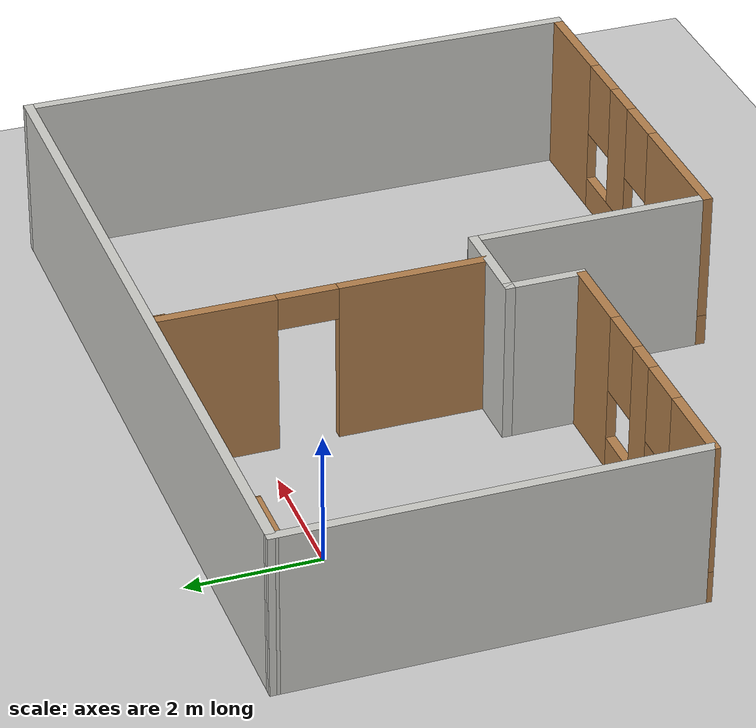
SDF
<sdf version="1.6">
 <world name="default">
  <model name="ground_plane">
   <static>1</static>
   <link name="link">
    <collision name="collision">
     <geometry><plane><normal>0 0 1</normal><size>100 100</size></plane></geometry>
     <surface><friction><ode><mu>100</mu><mu2>50</mu2></ode></friction></surface>
    </collision>
    <visual name="visual">
     <cast_shadows>0</cast_shadows>
     <geometry><plane><normal>0 0 1</normal><size>100 100</size></plane></geometry>
     <material>
      <script><uri>file://media/materials/scripts/gazebo.material</uri><name>Gazebo/Grey</name></script>
     </material>
    </visual>
   </link>
  </model>
  <model name="Building">
   <pose>3.3411 -2.74153 0 0 -0 0</pose>
   <link name="Wall_26">
    <collision name="Wall_26_Collision">
     <geometry><box><size>11.9548 0.15 2.5</size></box></geometry>
     <pose>0 0 1.25 0 -0 0</pose>
    </collision>
    <visual name="Wall_26_Visual">
     <pose>0 0 1.25 0 -0 0</pose>
     <geometry><box><size>11.9548 0.15 2.5</size></box></geometry>
     <material>
      <script><uri>file://media/materials/scripts/gazebo.material</uri><name>Gazebo/CeilingTiled</name></script>
      <ambient>1 1 1 1</ambient>
     </material>
     <meta><layer>0</layer></meta>
    </visual>
    <pose>-0.000176 4.29996 0 0 0 -0.000586</pose>
   </link>
   <link name="Wall_27">
    <collision name="Wall_27_Collision">
     <geometry><box><size>8.75 0.15 2.5</size></box></geometry>
     <pose>0 0 1.25 0 -0 0</pose>
    </collision>
    <visual name="Wall_27_Visual">
     <pose>0 0 1.25 0 -0 0</pose>
     <geometry><box><size>8.75 0.15 2.5</size></box></geometry>
     <material>
      <script><uri>file://media/materials/scripts/gazebo.material</uri><name>Gazebo/CeilingTiled</name></script>
      <ambient>1 1 1 1</ambient>
     </material>
     <meta><layer>0</layer></meta>
    </visual>
    <pose>5.90246 -0.003458 0 0 0 -1.57074</pose>
   </link>
   <link name="Wall_28">
    <pose>2.97769 -4.30342 0 0 -0 3.14159</pose>
    <visual name="Wall_28_Visual_0">
     <pose>-2.16132 0 1.25 0 -0 0</pose>
     <geometry><box><size>1.67735 0.15 2.5</size></box></geometry>
     <material>
      <script><uri>file://media/materials/scripts/gazebo.material</uri><name>Gazebo/Wood</name></script>
      <ambient>1 1 1 1</ambient>
     </material>
     <meta><layer>0</layer></meta>
    </visual>
    <collision name="Wall_28_Collision_0">
     <geometry><box><size>1.67735 0.15 2.5</size></box></geometry>
     <pose>-2.16132 0 1.25 0 -0 0</pose>
    </collision>
    <visual name="Wall_28_Visual_1">
     <pose>0.838676 0 0.25 0 -0 0</pose>
     <geometry><box><size>4.32265 0.15 0.5</size></box></geometry>
     <material>
      <script><uri>file://media/materials/scripts/gazebo.material</uri><name>Gazebo/Wood</name></script>
      <ambient>1 1 1 1</ambient>
     </material>
     <meta><layer>0</layer></meta>
    </visual>
    <collision name="Wall_28_Collision_1">
     <geometry><box><size>4.32265 0.15 0.5</size></box></geometry>
     <pose>0.838676 0 0.25 0 -0 0</pose>
    </collision>
    <visual name="Wall_28_Visual_2">
     <pose>-0.194936 0 1.5 0 -0 0</pose>
     <geometry><box><size>0.655424 0.15 2</size></box></geometry>
     <material>
      <script><uri>file://media/materials/scripts/gazebo.material</uri><name>Gazebo/Wood</name></script>
      <ambient>1 1 1 1</ambient>
     </material>
     <meta><layer>0</layer></meta>
    </visual>
    <collision name="Wall_28_Collision_2">
     <geometry><box><size>0.655424 0.15 2</size></box></geometry>
     <pose>-0.194936 0 1.5 0 -0 0</pose>
    </collision>
    <visual name="Wall_28_Visual_3">
     <pose>1.96639 0 1.5 0 -0 0</pose>
     <geometry><box><size>2.06722 0.15 2</size></box></geometry>
     <material>
      <script><uri>file://media/materials/scripts/gazebo.material</uri><name>Gazebo/Wood</name></script>
      <ambient>1 1 1 1</ambient>
     </material>
     <meta><layer>0</layer></meta>
    </visual>
    <collision name="Wall_28_Collision_3">
     <geometry><box><size>2.06722 0.15 2</size></box></geometry>
     <pose>1.96639 0 1.5 0 -0 0</pose>
    </collision>
    <visual name="Wall_28_Visual_4">
     <pose>-0.922648 0 1.9 0 -0 0</pose>
     <geometry><box><size>0.8 0.15 1.2</size></box></geometry>
     <material>
      <script><uri>file://media/materials/scripts/gazebo.material</uri><name>Gazebo/Wood</name></script>
      <ambient>1 1 1 1</ambient>
     </material>
     <meta><layer>0</layer></meta>
    </visual>
    <collision name="Wall_28_Collision_4">
     <geometry><box><size>0.8 0.15 1.2</size></box></geometry>
     <pose>-0.922648 0 1.9 0 -0 0</pose>
    </collision>
    <visual name="Wall_28_Visual_5">
     <pose>0.532776 0 1.9 0 -0 0</pose>
     <geometry><box><size>0.8 0.15 1.2</size></box></geometry>
     <material>
      <script><uri>file://media/materials/scripts/gazebo.material</uri><name>Gazebo/Wood</name></script>
      <ambient>1 1 1 1</ambient>
     </material>
     <meta><layer>0</layer></meta>
    </visual>
    <collision name="Wall_28_Collision_5">
     <geometry><box><size>0.8 0.15 1.2</size></box></geometry>
     <pose>0.532776 0 1.9 0 -0 0</pose>
    </collision>
   </link>
   <link name="Wall_29">
    <collision name="Wall_29_Collision">
     <geometry><box><size>3.75 0.15 2.5</size></box></geometry>
     <pose>0 0 1.25 0 -0 0</pose>
    </collision>
    <visual name="Wall_29_Visual">
     <pose>0 0 1.25 0 -0 0</pose>
     <geometry><box><size>3.75 0.15 2.5</size></box></geometry>
     <material>
      <script><uri>file://media/materials/scripts/gazebo.material</uri><name>Gazebo/CeilingTiled</name></script>
      <ambient>1 1 1 1</ambient>
     </material>
     <meta><layer>0</layer></meta>
    </visual>
    <pose>0.052686 -2.50342 0 0 -0 1.5708</pose>
   </link>
   <link name="Wall_30">
    <collision name="Wall_30_Collision">
     <geometry><box><size>1.5 0.15 2.5</size></box></geometry>
     <pose>0 0 1.25 0 -0 0</pose>
    </collision>
    <visual name="Wall_30_Visual">
     <pose>0 0 1.25 0 -0 0</pose>
     <geometry><box><size>1.5 0.15 2.5</size></box></geometry>
     <material>
      <script><uri>file://media/materials/scripts/gazebo.material</uri><name>Gazebo/CeilingTiled</name></script>
      <ambient>1 1 1 1</ambient>
     </material>
     <meta><layer>0</layer></meta>
    </visual>
    <pose>-0.622313 -0.703418 0 0 -0 3.14159</pose>
   </link>
   <link name="Wall_31">
    <collision name="Wall_31_Collision">
     <geometry><box><size>1.25 0.15 2.5</size></box></geometry>
     <pose>0 0 1.25 0 -0 0</pose>
    </collision>
    <visual name="Wall_31_Visual">
     <pose>0 0 1.25 0 -0 0</pose>
     <geometry><box><size>1.25 0.15 2.5</size></box></geometry>
     <material>
      <script><uri>file://media/materials/scripts/gazebo.material</uri><name>Gazebo/CeilingTiled</name></script>
      <ambient>1 1 1 1</ambient>
     </material>
     <meta><layer>0</layer></meta>
    </visual>
    <pose>-1.29731 -1.25342 0 0 0 -1.5708</pose>
   </link>
   <link name="Wall_32">
    <pose>-3.59995 -1.8 0 0 -0 3.14011</pose>
    <visual name="Wall_32_Visual_0">
     <pose>-1.71646 0 1.25 0 -0 0</pose>
     <geometry><box><size>1.32235 0.15 2.5</size></box></geometry>
     <material>
      <script><uri>file://media/materials/scripts/gazebo.material</uri><name>Gazebo/Wood</name></script>
      <ambient>1 1 1 1</ambient>
     </material>
     <meta><layer>0</layer></meta>
    </visual>
    <collision name="Wall_32_Collision_0">
     <geometry><box><size>1.32235 0.15 2.5</size></box></geometry>
     <pose>-1.71646 0 1.25 0 -0 0</pose>
    </collision>
    <visual name="Wall_32_Visual_1">
     <pose>0.661177 0 0.25 0 -0 0</pose>
     <geometry><box><size>3.43291 0.15 0.5</size></box></geometry>
     <material>
      <script><uri>file://media/materials/scripts/gazebo.material</uri><name>Gazebo/Wood</name></script>
      <ambient>1 1 1 1</ambient>
     </material>
     <meta><layer>0</layer></meta>
    </visual>
    <collision name="Wall_32_Collision_1">
     <geometry><box><size>3.43291 0.15 0.5</size></box></geometry>
     <pose>0.661177 0 0.25 0 -0 0</pose>
    </collision>
    <visual name="Wall_32_Visual_2">
     <pose>0.015645 0 1.5 0 -0 0</pose>
     <geometry><box><size>0.541852 0.15 2</size></box></geometry>
     <material>
      <script><uri>file://media/materials/scripts/gazebo.material</uri><name>Gazebo/Wood</name></script>
      <ambient>1 1 1 1</ambient>
     </material>
     <meta><layer>0</layer></meta>
    </visual>
    <collision name="Wall_32_Collision_2">
     <geometry><box><size>0.541852 0.15 2</size></box></geometry>
     <pose>0.015645 0 1.5 0 -0 0</pose>
    </collision>
    <visual name="Wall_32_Visual_3">
     <pose>1.7321 0 1.5 0 -0 0</pose>
     <geometry><box><size>1.29106 0.15 2</size></box></geometry>
     <material>
      <script><uri>file://media/materials/scripts/gazebo.material</uri><name>Gazebo/Wood</name></script>
      <ambient>1 1 1 1</ambient>
     </material>
     <meta><layer>0</layer></meta>
    </visual>
    <collision name="Wall_32_Collision_3">
     <geometry><box><size>1.29106 0.15 2</size></box></geometry>
     <pose>1.7321 0 1.5 0 -0 0</pose>
    </collision>
    <visual name="Wall_32_Visual_4">
     <pose>-0.655281 0 1.9 0 -0 0</pose>
     <geometry><box><size>0.8 0.15 1.2</size></box></geometry>
     <material>
      <script><uri>file://media/materials/scripts/gazebo.material</uri><name>Gazebo/Wood</name></script>
      <ambient>1 1 1 1</ambient>
     </material>
     <meta><layer>0</layer></meta>
    </visual>
    <collision name="Wall_32_Collision_4">
     <geometry><box><size>0.8 0.15 1.2</size></box></geometry>
     <pose>-0.655281 0 1.9 0 -0 0</pose>
    </collision>
    <visual name="Wall_32_Visual_5">
     <pose>0.686571 0 1.9 0 -0 0</pose>
     <geometry><box><size>0.8 0.15 1.2</size></box></geometry>
     <material>
      <script><uri>file://media/materials/scripts/gazebo.material</uri><name>Gazebo/Wood</name></script>
      <ambient>1 1 1 1</ambient>
     </material>
     <meta><layer>0</layer></meta>
    </visual>
    <collision name="Wall_32_Collision_5">
     <geometry><box><size>0.8 0.15 1.2</size></box></geometry>
     <pose>0.686571 0 1.9 0 -0 0</pose>
    </collision>
   </link>
   <link name="Wall_33">
    <collision name="Wall_33_Collision">
     <geometry><box><size>6.25 0.15 2.5</size></box></geometry>
     <pose>0 0 1.25 0 -0 0</pose>
    </collision>
    <visual name="Wall_33_Visual">
     <pose>0 0 1.25 0 -0 0</pose>
     <geometry><box><size>6.25 0.15 2.5</size></box></geometry>
     <material>
      <script><uri>file://media/materials/scripts/gazebo.material</uri><name>Gazebo/CeilingTiled</name></script>
      <ambient>1 1 1 1</ambient>
     </material>
     <meta><layer>0</layer></meta>
    </visual>
    <pose>-5.90258 1.25342 0 0 -0 1.5708</pose>
   </link>
   <link name="Wall_35">
    <pose>-0.511658 1.72502 0 0 0 -1.5708</pose>
    <visual name="Wall_35_Visual_0">
     <pose>-1.62043 0 1.25 0 -0 0</pose>
     <geometry><box><size>1.75914 0.15 2.5</size></box></geometry>
     <material>
      <script><uri>file://media/materials/scripts/gazebo.material</uri><name>Gazebo/Wood</name></script>
      <ambient>1 1 1 1</ambient>
     </material>
     <meta><layer>0</layer></meta>
    </visual>
    <collision name="Wall_35_Collision_0">
     <geometry><box><size>1.75914 0.15 2.5</size></box></geometry>
     <pose>-1.62043 0 1.25 0 -0 0</pose>
    </collision>
    <visual name="Wall_35_Visual_1">
     <pose>1.32957 0 1.25 0 -0 0</pose>
     <geometry><box><size>2.34086 0.15 2.5</size></box></geometry>
     <material>
      <script><uri>file://media/materials/scripts/gazebo.material</uri><name>Gazebo/Wood</name></script>
      <ambient>1 1 1 1</ambient>
     </material>
     <meta><layer>0</layer></meta>
    </visual>
    <collision name="Wall_35_Collision_1">
     <geometry><box><size>2.34086 0.15 2.5</size></box></geometry>
     <pose>1.32957 0 1.25 0 -0 0</pose>
    </collision>
    <visual name="Wall_35_Visual_2">
     <pose>-0.290864 0 2.25 0 -0 0</pose>
     <geometry><box><size>0.9 0.15 0.5</size></box></geometry>
     <material>
      <script><uri>file://media/materials/scripts/gazebo.material</uri><name>Gazebo/Wood</name></script>
      <ambient>1 1 1 1</ambient>
     </material>
     <meta><layer>0</layer></meta>
    </visual>
    <collision name="Wall_35_Collision_2">
     <geometry><box><size>0.9 0.15 0.5</size></box></geometry>
     <pose>-0.290864 0 2.25 0 -0 0</pose>
    </collision>
   </link>
   <static>1</static>
  </model>
  <model name="bookshelf">
   <static>1</static>
   <link name="link">
    <inertial><mass>1</mass></inertial>
    <collision name="back">
     <pose>0 0.005 0.6 0 -0 0</pose>
     <geometry><box><size>0.9 0.01 1.2</size></box></geometry>
    </collision>
    <visual name="visual1">
     <pose>0 0.005 0.6 0 -0 0</pose>
     <geometry><box><size>0.9 0.01 1.2</size></box></geometry>
     <material>
      <script><uri>file://media/materials/scripts/gazebo.material</uri><name>Gazebo/Wood</name></script>
     </material>
    </visual>
    <collision name="left_side">
     <pose>0.45 -0.195 0.6 0 -0 0</pose>
     <geometry><box><size>0.02 0.4 1.2</size></box></geometry>
    </collision>
    <visual name="visual2">
     <pose>0.45 -0.195 0.6 0 -0 0</pose>
     <geometry><box><size>0.02 0.4 1.2</size></box></geometry>
     <material>
      <script><uri>file://media/materials/scripts/gazebo.material</uri><name>Gazebo/Wood</name></script>
     </material>
    </visual>
    <collision name="right_side">
     <pose>-0.45 -0.195 0.6 0 -0 0</pose>
     <geometry><box><size>0.02 0.4 1.2</size></box></geometry>
    </collision>
    <visual name="visual3">
     <pose>-0.45 -0.195 0.6 0 -0 0</pose>
     <geometry><box><size>0.02 0.4 1.2</size></box></geometry>
     <material>
      <script><uri>file://media/materials/scripts/gazebo.material</uri><name>Gazebo/Wood</name></script>
     </material>
    </visual>
    <collision name="bottom">
     <pose>0 -0.195 0.03 0 -0 0</pose>
     <geometry><box><size>0.88 0.4 0.06</size></box></geometry>
    </collision>
    <visual name="visual4">
     <pose>0 -0.195 0.03 0 -0 0</pose>
     <geometry><box><size>0.88 0.4 0.06</size></box></geometry>
     <material>
      <script><uri>file://media/materials/scripts/gazebo.material</uri><name>Gazebo/Wood</name></script>
     </material>
    </visual>
    <collision name="top">
     <pose>0 -0.195 1.19 0 -0 0</pose>
     <geometry><box><size>0.88 0.4 0.02</size></box></geometry>
    </collision>
    <visual name="visual5">
     <pose>0 -0.195 1.19 0 -0 0</pose>
     <geometry><box><size>0.88 0.4 0.02</size></box></geometry>
     <material>
      <script><uri>file://media/materials/scripts/gazebo.material</uri><name>Gazebo/Wood</name></script>
     </material>
    </visual>
    <collision name="low_shelf">
     <pose>0 -0.195 0.43 0 -0 0</pose>
     <geometry><box><size>0.88 0.4 0.02</size></box></geometry>
    </collision>
    <visual name="visual6">
     <pose>0 -0.195 0.43 0 -0 0</pose>
     <geometry><box><size>0.88 0.4 0.02</size></box></geometry>
     <material>
      <script><uri>file://media/materials/scripts/gazebo.material</uri><name>Gazebo/Wood</name></script>
     </material>
    </visual>
    <collision name="high_shelf">
     <pose>0 -0.195 0.8 0 -0 0</pose>
     <geometry><box><size>0.88 0.4 0.02</size></box></geometry>
    </collision>
    <visual name="visual7">
     <pose>0 -0.195 0.8 0 -0 0</pose>
     <geometry><box><size>0.88 0.4 0.02</size></box></geometry>
     <material>
      <script><uri>file://media/materials/scripts/gazebo.material</uri><name>Gazebo/Wood</name></script>
     </material>
    </visual>
   </link>
   <pose>-0.362608 1.25683 0 0 -0 0</pose>
  </model>
  <model name="bookshelf_0">
   <static>1</static>
   <link name="link">
    <inertial><mass>1</mass></inertial>
    <collision name="back">
     <pose>0 0.005 0.6 0 -0 0</pose>
     <geometry><box><size>0.9 0.01 1.2</size></box></geometry>
    </collision>
    <visual name="visual1">
     <pose>0 0.005 0.6 0 -0 0</pose>
     <geometry><box><size>0.9 0.01 1.2</size></box></geometry>
     <material>
      <script><uri>file://media/materials/scripts/gazebo.material</uri><name>Gazebo/Wood</name></script>
     </material>
    </visual>
    <collision name="left_side">
     <pose>0.45 -0.195 0.6 0 -0 0</pose>
     <geometry><box><size>0.02 0.4 1.2</size></box></geometry>
    </collision>
    <visual name="visual2">
     <pose>0.45 -0.195 0.6 0 -0 0</pose>
     <geometry><box><size>0.02 0.4 1.2</size></box></geometry>
     <material>
      <script><uri>file://media/materials/scripts/gazebo.material</uri><name>Gazebo/Wood</name></script>
     </material>
    </visual>
    <collision name="right_side">
     <pose>-0.45 -0.195 0.6 0 -0 0</pose>
     <geometry><box><size>0.02 0.4 1.2</size></box></geometry>
    </collision>
    <visual name="visual3">
     <pose>-0.45 -0.195 0.6 0 -0 0</pose>
     <geometry><box><size>0.02 0.4 1.2</size></box></geometry>
     <material>
      <script><uri>file://media/materials/scripts/gazebo.material</uri><name>Gazebo/Wood</name></script>
     </material>
    </visual>
    <collision name="bottom">
     <pose>0 -0.195 0.03 0 -0 0</pose>
     <geometry><box><size>0.88 0.4 0.06</size></box></geometry>
    </collision>
    <visual name="visual4">
     <pose>0 -0.195 0.03 0 -0 0</pose>
     <geometry><box><size>0.88 0.4 0.06</size></box></geometry>
     <material>
      <script><uri>file://media/materials/scripts/gazebo.material</uri><name>Gazebo/Wood</name></script>
     </material>
    </visual>
    <collision name="top">
     <pose>0 -0.195 1.19 0 -0 0</pose>
     <geometry><box><size>0.88 0.4 0.02</size></box></geometry>
    </collision>
    <visual name="visual5">
     <pose>0 -0.195 1.19 0 -0 0</pose>
     <geometry><box><size>0.88 0.4 0.02</size></box></geometry>
     <material>
      <script><uri>file://media/materials/scripts/gazebo.material</uri><name>Gazebo/Wood</name></script>
     </material>
    </visual>
    <collision name="low_shelf">
     <pose>0 -0.195 0.43 0 -0 0</pose>
     <geometry><box><size>0.88 0.4 0.02</size></box></geometry>
    </collision>
    <visual name="visual6">
     <pose>0 -0.195 0.43 0 -0 0</pose>
     <geometry><box><size>0.88 0.4 0.02</size></box></geometry>
     <material>
      <script><uri>file://media/materials/scripts/gazebo.material</uri><name>Gazebo/Wood</name></script>
     </material>
    </visual>
    <collision name="high_shelf">
     <pose>0 -0.195 0.8 0 -0 0</pose>
     <geometry><box><size>0.88 0.4 0.02</size></box></geometry>
    </collision>
    <visual name="visual7">
     <pose>0 -0.195 0.8 0 -0 0</pose>
     <geometry><box><size>0.88 0.4 0.02</size></box></geometry>
     <material>
      <script><uri>file://media/materials/scripts/gazebo.material</uri><name>Gazebo/Wood</name></script>
     </material>
    </visual>
   </link>
   <pose>4.45919 1.15293 0 0 -0 0</pose>
  </model>
 </world>
</sdf>
